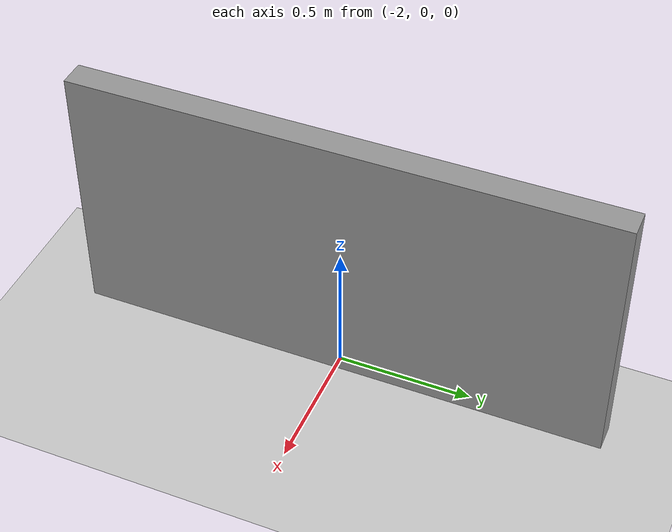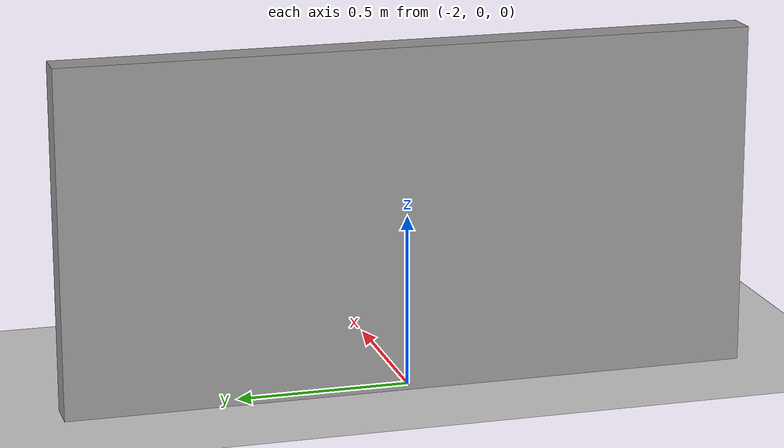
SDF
<sdf version='1.6'>
  <world name='default'>
    <light name='sun' type='directional'>
      <cast_shadows>1</cast_shadows>
      <pose frame=''>0 0 10 0 -0 0</pose>
      <diffuse>0.8 0.8 0.8 1</diffuse>
      <specular>0.2 0.2 0.2 1</specular>
      <attenuation>
        <range>1000</range>
        <constant>0.9</constant>
        <linear>0.01</linear>
        <quadratic>0.001</quadratic>
      </attenuation>
      <direction>-0.5 0.1 -0.9</direction>
    </light>
    <model name='ground_plane'>
      <static>1</static>
      <link name='link'>
        <collision name='collision'>
          <geometry>
            <plane>
              <normal>0 0 1</normal>
              <size>100 100</size>
            </plane>
          </geometry>
          <surface>
            <friction>
              <ode>
                <mu>100</mu>
                <mu2>50</mu2>
              </ode>
              <torsional>
                <ode/>
              </torsional>
            </friction>
            <contact>
              <ode/>
            </contact>
            <bounce/>
          </surface>
          <max_contacts>10</max_contacts>
        </collision>
        <visual name='visual'>
          <cast_shadows>0</cast_shadows>
          <geometry>
            <plane>
              <normal>0 0 1</normal>
              <size>100 100</size>
            </plane>
          </geometry>
          <material>
            <script>
              <uri>file://media/materials/scripts/gazebo.material</uri>
              <name>Gazebo/Grey</name>
            </script>
          </material>
        </visual>
        <self_collide>0</self_collide>
        <kinematic>0</kinematic>
      </link>
    </model>
    <gravity>0 0 -9.8</gravity>
    <magnetic_field>6e-06 2.3e-05 -4.2e-05</magnetic_field>
    <atmosphere type='adiabatic'/>
    <physics name='default_physics' default='0' type='ode'>
      <max_step_size>0.001</max_step_size>
      <real_time_factor>1</real_time_factor>
      <real_time_update_rate>1000</real_time_update_rate>
    </physics>
    <scene>
      <ambient>0.4 0.4 0.4 1</ambient>
      <background>0.7 0.7 0.7 1</background>
      <shadows>1</shadows>
    </scene>

    <model name='obstacle'>
      <link name='link'>
        <pose frame=''>-2 0 0.5 0 -0 0</pose>
        <inertial>
          <mass>100</mass>
          <inertia>
            <ixx>0.166667</ixx>
            <ixy>0</ixy>
            <ixz>0</ixz>
            <iyy>0.166667</iyy>
            <iyz>0</iyz>
            <izz>0.166667</izz>
          </inertia>
        </inertial>
        <self_collide>0</self_collide>
        <kinematic>1</kinematic>
        <visual name='visual'>
          <geometry>
            <box>
              <size>0.1 2 1</size>
            </box>
          </geometry>
          <material>
            <script>
              <name>Gazebo/Grey</name>
              <uri>file://media/materials/scripts/gazebo.material</uri>
            </script>
            <shader type='pixel'>
              <normal_map>__default__</normal_map>
            </shader>
            <ambient>1 1 1 1</ambient>
            <diffuse>1 1 1 1</diffuse>
            <specular>0.01 0.01 0.01 1</specular>
            <emissive>0 0 0 1</emissive>
          </material>
          <pose frame=''>0 0 0 0 -0 0</pose>
          <transparency>0</transparency>
          <cast_shadows>1</cast_shadows>
        </visual>
        <collision name='collision'>
          <laser_retro>0</laser_retro>
          <max_contacts>10</max_contacts>
          <pose frame=''>0 0 0 0 -0 0</pose>
          <geometry>
            <box>
              <size>0.1 2 1</size>
            </box>
          </geometry>
          <surface>
            <friction>
              <ode>
                <mu>1</mu>
                <mu2>1</mu2>
                <fdir1>0 0 0</fdir1>
                <slip1>0</slip1>
                <slip2>0</slip2>
              </ode>
              <torsional>
                <coefficient>1</coefficient>
                <patch_radius>0</patch_radius>
                <surface_radius>0</surface_radius>
                <use_patch_radius>1</use_patch_radius>
                <ode>
                  <slip>0</slip>
                </ode>
              </torsional>
            </friction>
            <bounce>
              <restitution_coefficient>0</restitution_coefficient>
              <threshold>1e+06</threshold>
            </bounce>
            <contact>
              <collide_without_contact>0</collide_without_contact>
              <collide_without_contact_bitmask>1</collide_without_contact_bitmask>
              <collide_bitmask>1</collide_bitmask>
              <ode>
                <soft_cfm>0</soft_cfm>
                <soft_erp>0.2</soft_erp>
                <kp>1e+13</kp>
                <kd>1</kd>
                <max_vel>0.01</max_vel>
                <min_depth>0</min_depth>
              </ode>
              <bullet>
                <split_impulse>1</split_impulse>
                <split_impulse_penetration_threshold>-0.01</split_impulse_penetration_threshold>
                <soft_cfm>0</soft_cfm>
                <soft_erp>0.2</soft_erp>
                <kp>1e+13</kp>
                <kd>1</kd>
              </bullet>
            </contact>
          </surface>
        </collision>
      </link>
      <static>0</static>
      <allow_auto_disable>1</allow_auto_disable>
    </model>

  </world>
</sdf>
